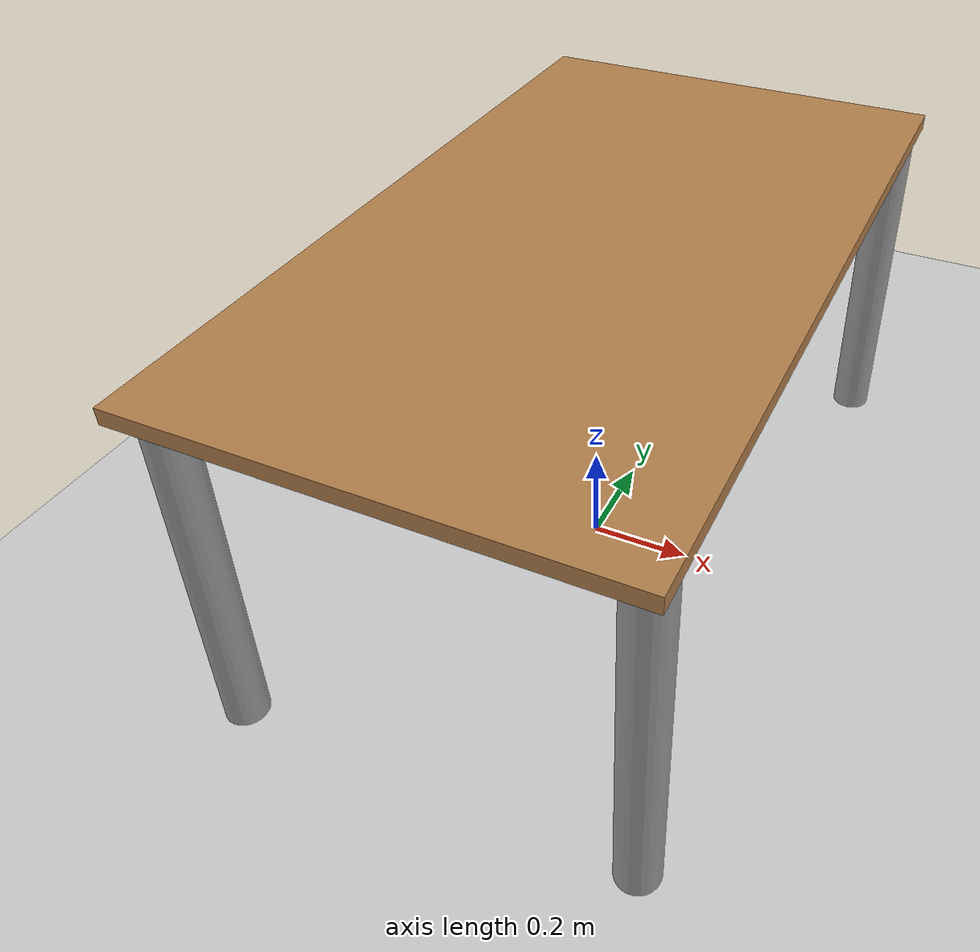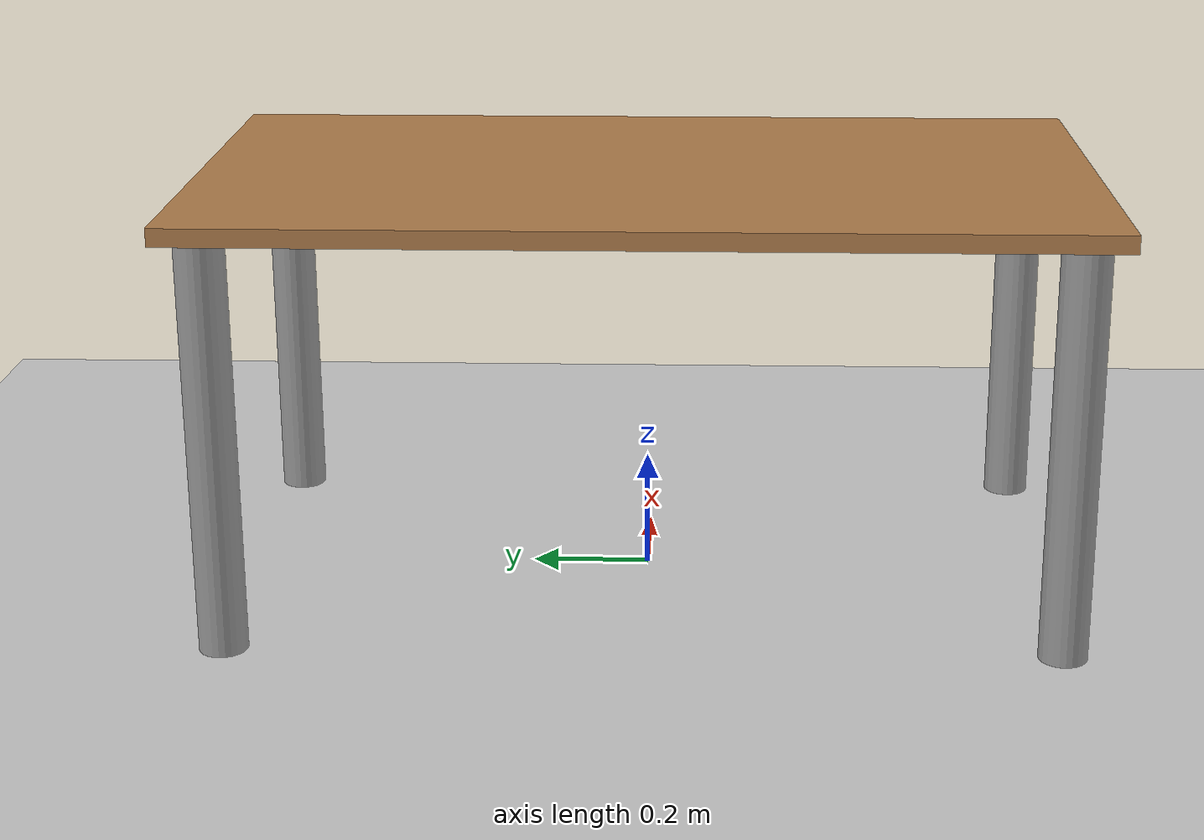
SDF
<?xml version="1.0" ?>
<sdf version="1.6">
  <world name="mycobot_320_world">

    <physics name="1ms" type="ignored">
      <max_step_size>0.001</max_step_size>
      <real_time_factor>1.0</real_time_factor>
    </physics>

    <!-- Required Gazebo Sim plugins -->
    <plugin
      filename="gz-sim-physics-system"
      name="gz::sim::systems::Physics">
    </plugin>
    <plugin
      filename="gz-sim-scene-broadcaster-system"
      name="gz::sim::systems::SceneBroadcaster">
    </plugin>
    <plugin
      filename="gz-sim-user-commands-system"
      name="gz::sim::systems::UserCommands">
    </plugin>
    <plugin
      filename="gz-sim-sensors-system"
      name="gz::sim::systems::Sensors">
    </plugin>
    <plugin
      filename="gz-sim-imu-system"
      name="gz::sim::systems::Imu">
    </plugin>

    <!-- Scene configuration -->
    <scene>
      <ambient>0.4 0.4 0.4 1.0</ambient>
      <background>0.7 0.7 0.7 1.0</background>
      <shadows>true</shadows>
    </scene>

    <!-- Sun light -->
    <light type="directional" name="sun">
      <pose>0 0 10 0 0 0</pose>
      <cast_shadows>true</cast_shadows>
      <intensity>1.0</intensity>
      <direction>-0.5 0.5 -1.0</direction>
      <diffuse>0.8 0.8 0.8 1.0</diffuse>
      <specular>0.2 0.2 0.2 1.0</specular>
    </light>

    <!-- Ground plane -->
    <model name="ground_plane">
      <static>true</static>
      <link name="link">
        <collision name="collision">
          <geometry>
            <plane>
              <normal>0 0 1</normal>
              <size>100 100</size>
            </plane>
          </geometry>
        </collision>
        <visual name="visual">
          <geometry>
            <plane>
              <normal>0 0 1</normal>
              <size>100 100</size>
            </plane>
          </geometry>
          <material>
            <ambient>0.8 0.8 0.8 1.0</ambient>
            <diffuse>0.8 0.8 0.8 1.0</diffuse>
            <specular>0.8 0.8 0.8 1.0</specular>
          </material>
        </visual>
      </link>
    </model>

    <!-- Work table for myCobot 320 -->
    <!-- Table height: 0.715m matches the spawn position in launch file -->
    <!-- Using model:// URI which Gazebo Sim resolves via GZ_SIM_RESOURCE_PATH -->
    <include>
      <uri>model://wood_table</uri>
      <pose>0 0 0 0 0 1.5708</pose>
      <name>work_table</name>
    </include>

  </world>
</sdf>

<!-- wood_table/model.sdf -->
<sdf version='1.7'>
  <model name='wood_table'>
    <static>1</static>
    <link name='link'>
      <collision name='surface'>
        <pose>0 0 0.7 0 -0 0</pose>
        <geometry>
          <box>
            <size>1.5 0.85 0.03</size>
          </box>
        </geometry>
        <surface>
          <friction>
            <ode>
              <mu>0.6</mu>
              <mu2>0.6</mu2>
            </ode>
          </friction>
        </surface>
      </collision>
      <visual name='visual1'>
        <pose>0 0 0.7 0 -0 0</pose>
        <geometry>
          <box>
            <size>1.5 0.85 0.03</size>
          </box>
        </geometry>
        <material>
          <script>
            <uri>file://media/materials/scripts/gazebo.material</uri>
            <name>Gazebo/Wood</name>
          </script>
        </material>
      </visual>
      <collision name='front_left_leg'>
        <pose>0.68 0.38 0.35 0 -0 0</pose>
        <geometry>
          <cylinder>
            <radius>0.04</radius>
            <length>0.7</length>
          </cylinder>
        </geometry>
      </collision>
      <visual name='front_left_leg'>
        <pose>0.68 0.38 0.35 0 -0 0</pose>
        <geometry>
          <cylinder>
            <radius>0.04</radius>
            <length>0.7</length>
          </cylinder>
        </geometry>
        <material>
          <script>
            <uri>file://media/materials/scripts/gazebo.material</uri>
            <name>Gazebo/Grey</name>
          </script>
        </material>
      </visual>
      <collision name='front_right_leg'>
        <pose>0.68 -0.38 0.35 0 -0 0</pose>
        <geometry>
          <cylinder>
            <radius>0.04</radius>
            <length>0.7</length>
          </cylinder>
        </geometry>
      </collision>
      <visual name='front_right_leg'>
        <pose>0.68 -0.38 0.35 0 -0 0</pose>
        <geometry>
          <cylinder>
            <radius>0.04</radius>
            <length>0.7</length>
          </cylinder>
        </geometry>
        <material>
          <script>
            <uri>file://media/materials/scripts/gazebo.material</uri>
            <name>Gazebo/Grey</name>
          </script>
        </material>
      </visual>
      <collision name='back_right_leg'>
        <pose>-0.68 -0.38 0.35 0 -0 0</pose>
        <geometry>
          <cylinder>
            <radius>0.04</radius>
            <length>0.7</length>
          </cylinder>
        </geometry>
      </collision>
      <visual name='back_right_leg'>
        <pose>-0.68 -0.38 0.35 0 -0 0</pose>
        <geometry>
          <cylinder>
            <radius>0.04</radius>
            <length>0.7</length>
          </cylinder>
        </geometry>
        <material>
          <script>
            <uri>file://media/materials/scripts/gazebo.material</uri>
            <name>Gazebo/Grey</name>
          </script>
        </material>
      </visual>
      <collision name='back_left_leg'>
        <pose>-0.68 0.38 0.35 0 -0 0</pose>
        <geometry>
          <cylinder>
            <radius>0.04</radius>
            <length>0.7</length>
          </cylinder>
        </geometry>
      </collision>
      <visual name='back_left_leg'>
        <pose>-0.68 0.38 0.35 0 -0 0</pose>
        <geometry>
          <cylinder>
            <radius>0.04</radius>
            <length>0.7</length>
          </cylinder>
        </geometry>
        <material>
          <script>
            <uri>file://media/materials/scripts/gazebo.material</uri>
            <name>Gazebo/Grey</name>
          </script>
        </material>
      </visual>
    </link>
    <pose>4e-06 -1e-06 -0 0 -0 0</pose>
  </model>
</sdf>
